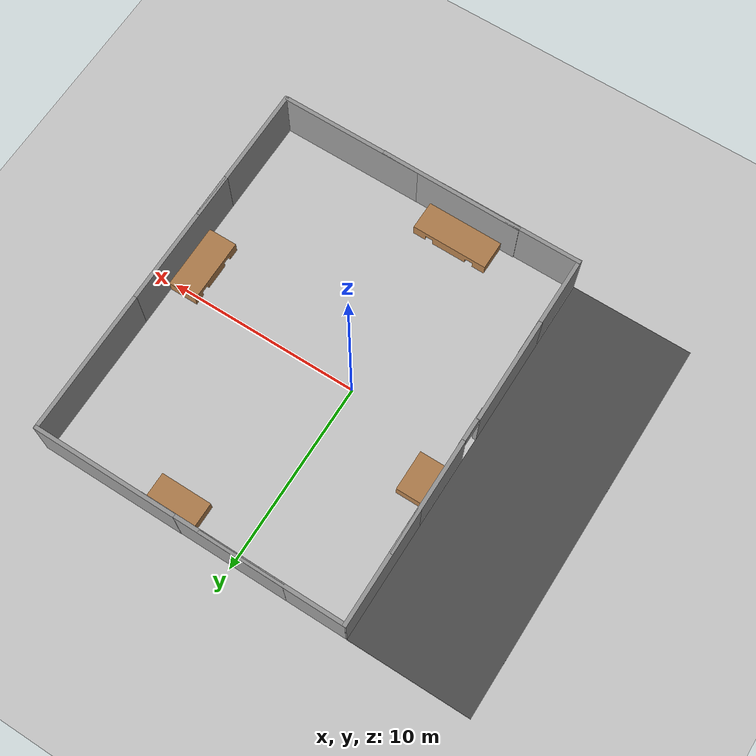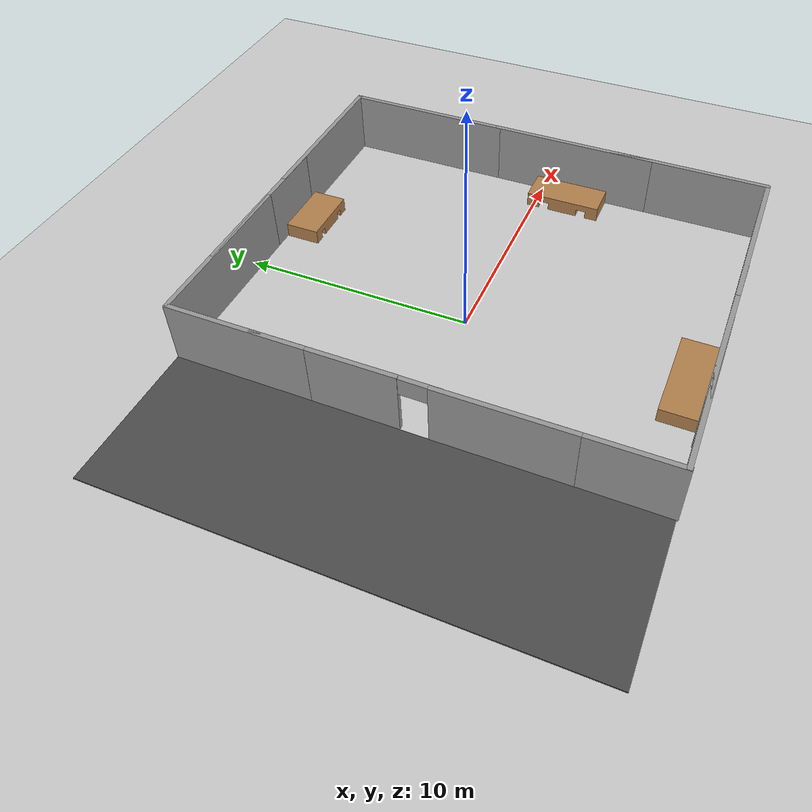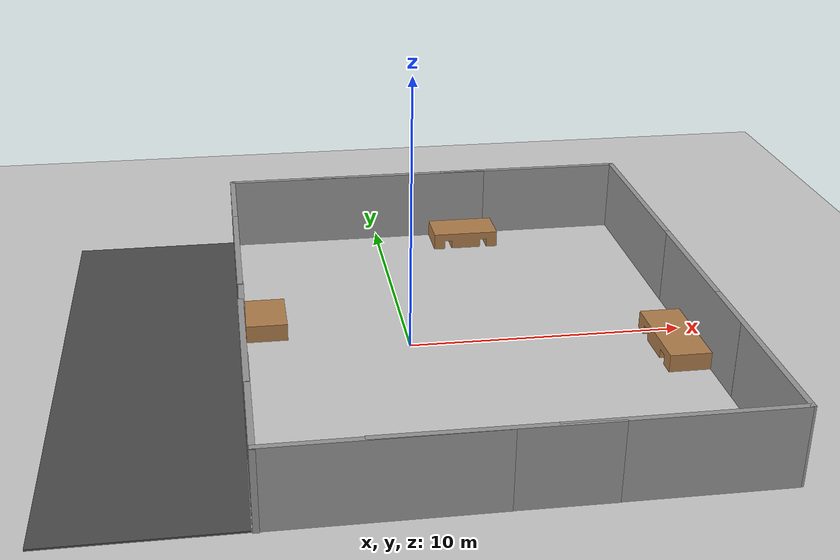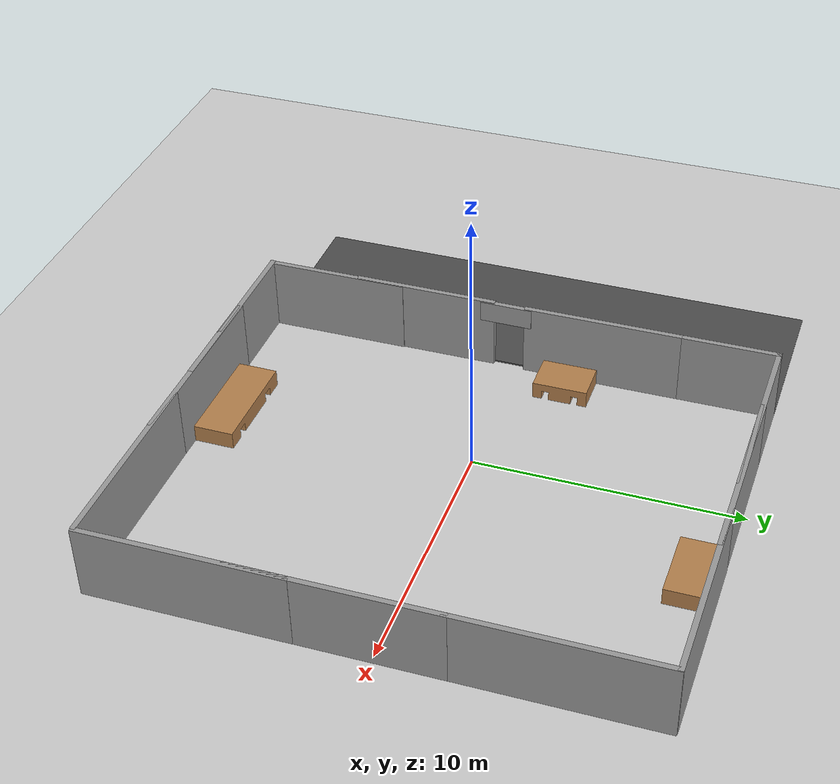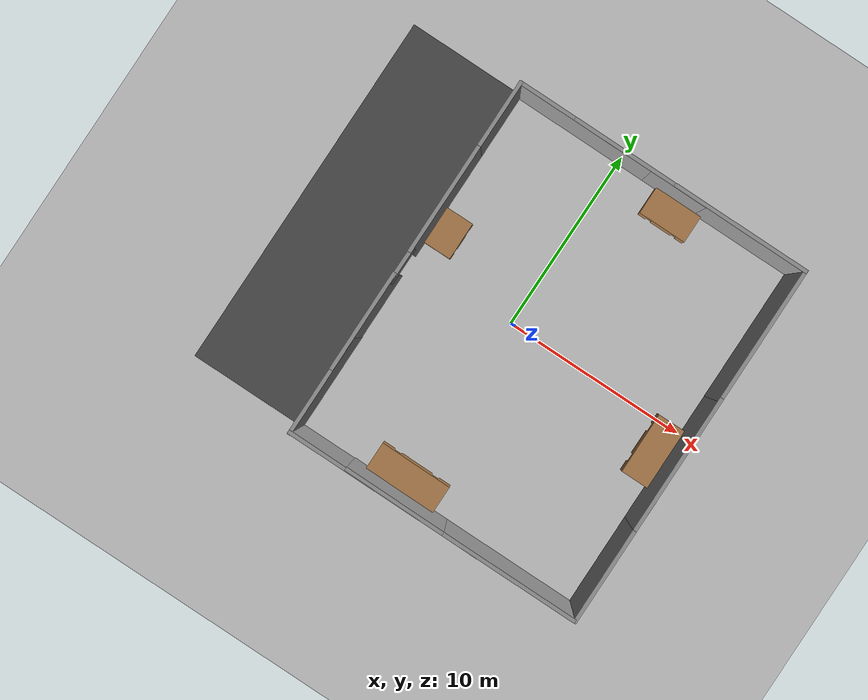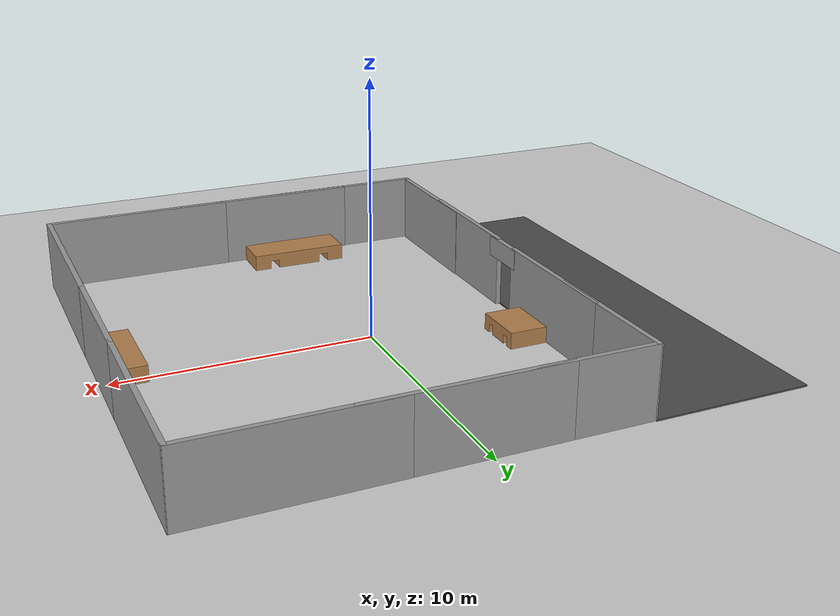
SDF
<sdf version="1.7">
 <world name="default">
  <light name="sun" type="directional">
   <pose>0 0 10 0 -0 0</pose>
   <diffuse>0.8 0.8 0.8 1</diffuse>
   <specular>0.2 0.2 0.2 1</specular>
   <attenuation>
    <range>1000</range>
    <constant>0.9</constant>
    <linear>0.01</linear>
    <quadratic>0.001</quadratic>
   </attenuation>
   <direction>-0.5 0.1 -0.9</direction>
   <spot><inner_angle>0</inner_angle><outer_angle>0</outer_angle><falloff>0</falloff></spot>
  </light>
  <model name="ground_plane">
   <static>1</static>
   <link name="link">
    <collision name="collision">
     <geometry><plane><normal>0 0 1</normal><size>100 100</size></plane></geometry>
     <surface><friction><ode><mu>100</mu><mu2>50</mu2></ode></friction></surface>
    </collision>
    <visual name="visual">
     <cast_shadows>0</cast_shadows>
     <geometry><plane><normal>0 0 1</normal><size>100 100</size></plane></geometry>
     <material>
      <script><uri>file://media/materials/scripts/gazebo.material</uri><name>Gazebo/Grey</name></script>
     </material>
    </visual>
   </link>
  </model>
  <gravity>0 0 -9.8</gravity>
  <magnetic_field>6e-06 2.3e-05 -4.2e-05</magnetic_field>
  <atmosphere type="adiabatic"/>
  <physics type="ode">
   <max_step_size>0.001</max_step_size>
   <real_time_factor>1</real_time_factor>
   <real_time_update_rate>1000</real_time_update_rate>
  </physics>
  <scene><ambient>0.4 0.4 0.4 1</ambient><background>0.7 0.7 0.7 1</background><shadows>1</shadows></scene>
  <spherical_coordinates>
   <surface_model>EARTH_WGS84</surface_model>
   <latitude_deg>0</latitude_deg>
   <longitude_deg>0</longitude_deg>
   <elevation>0</elevation>
   <heading_deg>0</heading_deg>
  </spherical_coordinates>
  <model name="grey_wall">
   <static>1</static>
   <link name="link">
    <pose>0 0 1.4 0 -0 0</pose>
    <collision name="collision"><geometry><box><size>7.5 0.2 2.8</size></box></geometry></collision>
    <visual name="visual">
     <cast_shadows>0</cast_shadows>
     <geometry><box><size>7.5 0.2 2.8</size></box></geometry>
     <material>
      <script>
       <uri>model://grey_wall/materials/scripts</uri>
       <uri>model://grey_wall/materials/textures</uri>
       <name>vrc/grey_wall</name>
      </script>
     </material>
    </visual>
   </link>
   <pose>6.48469 9.73394 0 0 -0 0</pose>
  </model>
  <model name="grey_wall_0">
   <static>1</static>
   <link name="link">
    <pose>0 0 1.4 0 -0 0</pose>
    <collision name="collision"><geometry><box><size>7.5 0.2 2.8</size></box></geometry></collision>
    <visual name="visual">
     <cast_shadows>0</cast_shadows>
     <geometry><box><size>7.5 0.2 2.8</size></box></geometry>
     <material>
      <script>
       <uri>model://grey_wall/materials/scripts</uri>
       <uri>model://grey_wall/materials/textures</uri>
       <name>vrc/grey_wall</name>
      </script>
     </material>
    </visual>
   </link>
   <pose>0.835174 9.72365 0 0 -0 0</pose>
  </model>
  <model name="grey_wall_1">
   <static>1</static>
   <link name="link">
    <pose>0 0 1.4 0 -0 0</pose>
    <collision name="collision"><geometry><box><size>7.5 0.2 2.8</size></box></geometry></collision>
    <visual name="visual">
     <cast_shadows>0</cast_shadows>
     <geometry><box><size>7.5 0.2 2.8</size></box></geometry>
     <material>
      <script>
       <uri>model://grey_wall/materials/scripts</uri>
       <uri>model://grey_wall/materials/textures</uri>
       <name>vrc/grey_wall</name>
      </script>
     </material>
    </visual>
   </link>
   <pose>6.47343 -10.0659 0 0 -0 0</pose>
  </model>
  <model name="grey_wall_2">
   <static>1</static>
   <link name="link">
    <pose>0 0 1.4 0 -0 0</pose>
    <collision name="collision"><geometry><box><size>7.5 0.2 2.8</size></box></geometry></collision>
    <visual name="visual">
     <cast_shadows>0</cast_shadows>
     <geometry><box><size>7.5 0.2 2.8</size></box></geometry>
     <material>
      <script>
       <uri>model://grey_wall/materials/scripts</uri>
       <uri>model://grey_wall/materials/textures</uri>
       <name>vrc/grey_wall</name>
      </script>
     </material>
    </visual>
   </link>
   <pose>0.933666 -10.0566 -0 0 0 -0.005759</pose>
  </model>
  <model name="grey_wall_3">
   <static>1</static>
   <link name="link">
    <pose>0 0 1.4 0 -0 0</pose>
    <collision name="collision"><geometry><box><size>7.5 0.2 2.8</size></box></geometry></collision>
    <visual name="visual">
     <cast_shadows>0</cast_shadows>
     <geometry><box><size>7.5 0.2 2.8</size></box></geometry>
     <material>
      <script>
       <uri>model://grey_wall/materials/scripts</uri>
       <uri>model://grey_wall/materials/textures</uri>
       <name>vrc/grey_wall</name>
      </script>
     </material>
    </visual>
   </link>
   <pose>10.1917 -1.19868 0 0 -0 1.5731</pose>
  </model>
  <model name="grey_wall_3_clone">
   <static>1</static>
   <link name="link">
    <pose>0 0 1.4 0 -0 0</pose>
    <collision name="collision"><geometry><box><size>7.5 0.2 2.8</size></box></geometry></collision>
    <visual name="visual">
     <cast_shadows>0</cast_shadows>
     <geometry><box><size>7.5 0.2 2.8</size></box></geometry>
     <material>
      <script>
       <uri>model://grey_wall/materials/scripts</uri>
       <uri>model://grey_wall/materials/textures</uri>
       <name>vrc/grey_wall</name>
      </script>
     </material>
    </visual>
   </link>
   <pose>10.1726 6.07295 0 0 -0 1.5731</pose>
  </model>
  <model name="grey_wall_3_clone_0">
   <static>1</static>
   <link name="link">
    <pose>0 0 1.4 0 -0 0</pose>
    <collision name="collision"><geometry><box><size>6.5 0.2 2.8</size></box></geometry></collision>
    <visual name="visual">
     <cast_shadows>0</cast_shadows>
     <geometry><box><size>6 0.2 2.8</size></box></geometry>
     <material>
      <script>
       <uri>model://grey_wall/materials/scripts</uri>
       <uri>model://grey_wall/materials/textures</uri>
       <name>vrc/grey_wall</name>
      </script>
     </material>
    </visual>
   </link>
   <pose>-5.96581 3.14206 0 0 -0 1.5731</pose>
  </model>
  <model name="grey_wall_3_clone_1">
   <static>1</static>
   <link name="link">
    <pose>0 0 1.4 0 -0 0</pose>
    <collision name="collision"><geometry><box><size>5.5 0.2 2.8</size></box></geometry></collision>
    <visual name="visual">
     <cast_shadows>0</cast_shadows>
     <geometry><box><size>5.5 0.2 2.8</size></box></geometry>
     <material>
      <script>
       <uri>model://grey_wall/materials/scripts</uri>
       <uri>model://grey_wall/materials/textures</uri>
       <name>vrc/grey_wall</name>
      </script>
     </material>
    </visual>
   </link>
   <pose>-5.97904 -3.77675 0 0 -0 1.5731</pose>
  </model>
  <model name="grey_wall_3_clone_2">
   <static>1</static>
   <link name="link">
    <collision name="collision"><geometry><box><size>2 0.2 0.8</size></box></geometry></collision>
    <visual name="visual">
     <cast_shadows>0</cast_shadows>
     <geometry><box><size>2 0.2 0.8</size></box></geometry>
     <material>
      <script>
       <uri>model://grey_wall/materials/scripts</uri>
       <uri>model://grey_wall/materials/textures</uri>
       <name>vrc/grey_wall</name>
      </script>
     </material>
    </visual>
   </link>
   <pose>-5.94615 -0.577036 2.37198 0 -0 1.56403</pose>
  </model>
  <model name="grey_wall_3_clone_0_clone">
   <static>1</static>
   <link name="link">
    <pose>0 0 1.4 0 -0 0</pose>
    <collision name="collision"><geometry><box><size>6.5 0.2 2.8</size></box></geometry></collision>
    <visual name="visual">
     <cast_shadows>0</cast_shadows>
     <geometry><box><size>6 0.2 2.8</size></box></geometry>
     <material>
      <script>
       <uri>model://grey_wall/materials/scripts</uri>
       <uri>model://grey_wall/materials/textures</uri>
       <name>vrc/grey_wall</name>
      </script>
     </material>
    </visual>
   </link>
   <pose>-5.97618 6.81442 0 0 -0 1.5731</pose>
  </model>
  <model name="grey_wall_3_clone_1_clone">
   <static>1</static>
   <link name="link">
    <pose>0 0 1.4 0 -0 0</pose>
    <collision name="collision"><geometry><box><size>5.5 0.2 2.8</size></box></geometry></collision>
    <visual name="visual">
     <cast_shadows>0</cast_shadows>
     <geometry><box><size>5.5 0.2 2.8</size></box></geometry>
     <material>
      <script>
       <uri>model://grey_wall/materials/scripts</uri>
       <uri>model://grey_wall/materials/textures</uri>
       <name>vrc/grey_wall</name>
      </script>
     </material>
    </visual>
   </link>
   <pose>-5.95536 -7.43945 -0.015803 0 -0 1.5731</pose>
  </model>
  <model name="grey_wall_3_clone_3">
   <static>1</static>
   <link name="link">
    <pose>0 0 1.4 0 -0 0</pose>
    <collision name="collision"><geometry><box><size>7.5 0.2 2.8</size></box></geometry></collision>
    <visual name="visual">
     <cast_shadows>0</cast_shadows>
     <geometry><box><size>7.5 0.2 2.8</size></box></geometry>
     <material>
      <script>
       <uri>model://grey_wall/materials/scripts</uri>
       <uri>model://grey_wall/materials/textures</uri>
       <name>vrc/grey_wall</name>
      </script>
     </material>
    </visual>
   </link>
   <pose>10.2075 -6.3912 0 0 -0 1.5731</pose>
  </model>
  <model name="dockstation1">
   <link name="link_0">
    <inertial>
     <mass>1</mass>
     <inertia>
      <ixx>0.166667</ixx>
      <ixy>0</ixy>
      <ixz>0</ixz>
      <iyy>0.166667</iyy>
      <iyz>0</iyz>
      <izz>0.166667</izz>
     </inertia>
    </inertial>
    <pose>1e-06 1e-06 0 0 -0 0.001492</pose>
    <visual name="visual">
     <geometry>
      <mesh>
       <uri>/home/sagni/catkin_wsthesis/src/robothesis/meshes/tables/new_table1.dae</uri>
       <scale>0.5 0.5 0.5</scale>
      </mesh>
     </geometry>
     <material>
      <lighting>1</lighting>
      <script><uri>file://media/materials/scripts/gazebo.material</uri><name>Gazebo/wood</name></script>
      <shader type="pixel"><normal_map>__default__</normal_map></shader>
      <ambient>0.3 0.3 0.3 1</ambient>
      <diffuse>0.7 0.7 0.7 1</diffuse>
      <specular>0.01 0.01 0.01 1</specular>
      <emissive>0 0 0 1</emissive>
     </material>
    </visual>
    <collision name="collision">
     <geometry>
      <mesh>
       <uri>/home/sagni/catkin_wsthesis/src/robothesis/meshes/tables/new_table1.dae</uri>
       <scale>0.5 0.5 0.5</scale>
      </mesh>
     </geometry>
     <surface>
      <friction>
       <ode><mu>1</mu><mu2>1</mu2><fdir1>0 0 0</fdir1><slip1>0</slip1><slip2>0</slip2></ode>
       <torsional>
        <coefficient>1</coefficient>
        <patch_radius>0</patch_radius>
        <surface_radius>0</surface_radius>
        <use_patch_radius>1</use_patch_radius>
        <ode><slip>0</slip></ode>
       </torsional>
      </friction>
      <bounce><restitution_coefficient>0</restitution_coefficient><threshold>1e+06</threshold></bounce>
      <contact>
       <collide_without_contact>0</collide_without_contact>
       <collide_without_contact_bitmask>1</collide_without_contact_bitmask>
       <collide_bitmask>1</collide_bitmask>
       <ode>
        <soft_cfm>0</soft_cfm>
        <soft_erp>0.2</soft_erp>
        <kp>1e+13</kp>
        <kd>1</kd>
        <max_vel>0.01</max_vel>
        <min_depth>0</min_depth>
       </ode>
       <bullet>
        <split_impulse>1</split_impulse>
        <split_impulse_penetration_threshold>-0.01</split_impulse_penetration_threshold>
        <soft_cfm>0</soft_cfm>
        <soft_erp>0.2</soft_erp>
        <kp>1e+13</kp>
        <kd>1</kd>
       </bullet>
      </contact>
     </surface>
    </collision>
   </link>
   <static>0</static>
   <pose>-0.077392 -9.2003 -0.002713 0 0 -0.007483</pose>
  </model>
  <model name="docksatation2">
   <link name="link_1">
    <inertial>
     <mass>1</mass>
     <inertia>
      <ixx>0.166667</ixx>
      <ixy>0</ixy>
      <ixz>0</ixz>
      <iyy>0.166667</iyy>
      <iyz>0</iyz>
      <izz>0.166667</izz>
     </inertia>
    </inertial>
    <pose>-1e-06 0 0 0 0 -1.57079</pose>
    <visual name="visual">
     <geometry>
      <mesh>
       <uri>/home/sagni/catkin_wsthesis/src/robothesis/meshes/tables/new_table2.dae</uri>
       <scale>0.5 0.5 0.5</scale>
      </mesh>
     </geometry>
     <material>
      <lighting>1</lighting>
      <script><uri>file://media/materials/scripts/gazebo.material</uri><name>Gazebo/wood</name></script>
      <shader type="pixel"><normal_map>__default__</normal_map></shader>
      <ambient>0.3 0.3 0.3 1</ambient>
      <diffuse>0.7 0.7 0.7 1</diffuse>
      <specular>0.01 0.01 0.01 1</specular>
      <emissive>0 0 0 1</emissive>
     </material>
    </visual>
    <collision name="collision">
     <geometry>
      <mesh>
       <uri>/home/sagni/catkin_wsthesis/src/robothesis/meshes/tables/new_table2.dae</uri>
       <scale>0.5 0.5 0.5</scale>
      </mesh>
     </geometry>
     <surface>
      <friction>
       <ode><mu>1</mu><mu2>1</mu2><fdir1>0 0 0</fdir1><slip1>0</slip1><slip2>0</slip2></ode>
       <torsional>
        <coefficient>1</coefficient>
        <patch_radius>0</patch_radius>
        <surface_radius>0</surface_radius>
        <use_patch_radius>1</use_patch_radius>
        <ode><slip>0</slip></ode>
       </torsional>
      </friction>
      <bounce><restitution_coefficient>0</restitution_coefficient><threshold>1e+06</threshold></bounce>
      <contact>
       <collide_without_contact>0</collide_without_contact>
       <collide_without_contact_bitmask>1</collide_without_contact_bitmask>
       <collide_bitmask>1</collide_bitmask>
       <ode>
        <soft_cfm>0</soft_cfm>
        <soft_erp>0.2</soft_erp>
        <kp>1e+13</kp>
        <kd>1</kd>
        <max_vel>0.01</max_vel>
        <min_depth>0</min_depth>
       </ode>
       <bullet>
        <split_impulse>1</split_impulse>
        <split_impulse_penetration_threshold>-0.01</split_impulse_penetration_threshold>
        <soft_cfm>0</soft_cfm>
        <soft_erp>0.2</soft_erp>
        <kp>1e+13</kp>
        <kd>1</kd>
       </bullet>
      </contact>
     </surface>
    </collision>
   </link>
   <static>0</static>
   <pose>9.34191 -1.38913 -0.002719 9e-06 -0 0.002387</pose>
  </model>
  <model name="dockstation4">
   <link name="link_3">
    <inertial>
     <mass>1</mass>
     <inertia>
      <ixx>0.166667</ixx>
      <ixy>0</ixy>
      <ixz>0</ixz>
      <iyy>0.166667</iyy>
      <iyz>0</iyz>
      <izz>0.166667</izz>
     </inertia>
    </inertial>
    <pose>4e-06 4e-06 0 0 0 -1.57783</pose>
    <visual name="visual">
     <geometry>
      <mesh>
       <uri>/home/sagni/catkin_wsthesis/src/robothesis/meshes/tables/new_table4.dae</uri>
       <scale>0.5 0.5 0.5</scale>
      </mesh>
     </geometry>
     <material>
      <lighting>1</lighting>
      <script><uri>file://media/materials/scripts/gazebo.material</uri><name>Gazebo/wood</name></script>
      <shader type="pixel"><normal_map>__default__</normal_map></shader>
      <ambient>0.3 0.3 0.3 1</ambient>
      <diffuse>0.7 0.7 0.7 1</diffuse>
      <specular>0.01 0.01 0.01 1</specular>
      <emissive>0 0 0 1</emissive>
     </material>
    </visual>
    <collision name="collision">
     <geometry>
      <mesh>
       <uri>/home/sagni/catkin_wsthesis/src/robothesis/meshes/tables/new_table4.dae</uri>
       <scale>0.5 0.5 0.5</scale>
      </mesh>
     </geometry>
     <surface>
      <friction>
       <ode><mu>1</mu><mu2>1</mu2><fdir1>0 0 0</fdir1><slip1>0</slip1><slip2>0</slip2></ode>
       <torsional>
        <coefficient>1</coefficient>
        <patch_radius>0</patch_radius>
        <surface_radius>0</surface_radius>
        <use_patch_radius>1</use_patch_radius>
        <ode><slip>0</slip></ode>
       </torsional>
      </friction>
      <bounce><restitution_coefficient>0</restitution_coefficient><threshold>1e+06</threshold></bounce>
      <contact>
       <collide_without_contact>0</collide_without_contact>
       <collide_without_contact_bitmask>1</collide_without_contact_bitmask>
       <collide_bitmask>1</collide_bitmask>
       <ode>
        <soft_cfm>0</soft_cfm>
        <soft_erp>0.2</soft_erp>
        <kp>1e+13</kp>
        <kd>1</kd>
        <max_vel>0.01</max_vel>
        <min_depth>0</min_depth>
       </ode>
       <bullet>
        <split_impulse>1</split_impulse>
        <split_impulse_penetration_threshold>-0.01</split_impulse_penetration_threshold>
        <soft_cfm>0</soft_cfm>
        <soft_erp>0.2</soft_erp>
        <kp>1e+13</kp>
        <kd>1</kd>
       </bullet>
      </contact>
     </surface>
    </collision>
   </link>
   <static>0</static>
   <pose>-5.08714 2.01341 -0.002713 0 -0 0.009337</pose>
  </model>
  <model name="dockingstation3">
   <link name="link_0">
    <inertial>
     <mass>1</mass>
     <inertia>
      <ixx>0.166667</ixx>
      <ixy>0</ixy>
      <ixz>0</ixz>
      <iyy>0.166667</iyy>
      <iyz>0</iyz>
      <izz>0.166667</izz>
     </inertia>
    </inertial>
    <pose>4e-06 -3e-06 0 0 -0 0</pose>
    <visual name="visual">
     <geometry>
      <mesh>
       <uri>/home/sagni/catkin_wsthesis/src/robothesis/meshes/tables/new_table3.dae</uri>
       <scale>0.5 0.5 0.5</scale>
      </mesh>
     </geometry>
     <material>
      <lighting>1</lighting>
      <script><uri>file://media/materials/scripts/gazebo.material</uri><name>Gazebo/wood</name></script>
      <shader type="pixel"><normal_map>__default__</normal_map></shader>
      <ambient>0.3 0.3 0.3 1</ambient>
      <diffuse>0.7 0.7 0.7 1</diffuse>
      <specular>0.01 0.01 0.01 1</specular>
      <emissive>0 0 0 1</emissive>
     </material>
    </visual>
    <collision name="collision">
     <geometry>
      <mesh>
       <uri>/home/sagni/catkin_wsthesis/src/robothesis/meshes/tables/new_table3.dae</uri>
       <scale>0.5 0.5 0.5</scale>
      </mesh>
     </geometry>
     <surface>
      <friction>
       <ode><mu>1</mu><mu2>1</mu2><fdir1>0 0 0</fdir1><slip1>0</slip1><slip2>0</slip2></ode>
       <torsional>
        <coefficient>1</coefficient>
        <patch_radius>0</patch_radius>
        <surface_radius>0</surface_radius>
        <use_patch_radius>1</use_patch_radius>
        <ode><slip>0</slip></ode>
       </torsional>
      </friction>
      <bounce><restitution_coefficient>0</restitution_coefficient><threshold>1e+06</threshold></bounce>
      <contact>
       <collide_without_contact>0</collide_without_contact>
       <collide_without_contact_bitmask>1</collide_without_contact_bitmask>
       <collide_bitmask>1</collide_bitmask>
       <ode>
        <soft_cfm>0</soft_cfm>
        <soft_erp>0.2</soft_erp>
        <kp>1e+13</kp>
        <kd>1</kd>
        <max_vel>0.01</max_vel>
        <min_depth>0</min_depth>
       </ode>
       <bullet>
        <split_impulse>1</split_impulse>
        <split_impulse_penetration_threshold>-0.01</split_impulse_penetration_threshold>
        <soft_cfm>0</soft_cfm>
        <soft_erp>0.2</soft_erp>
        <kp>1e+13</kp>
        <kd>1</kd>
       </bullet>
      </contact>
     </surface>
    </collision>
   </link>
   <static>0</static>
   <pose>3.57608 8.84257 -0.002971 -5e-06 3e-06 0.000286</pose>
  </model>
  <model name="grey_wall_4">
   <static>1</static>
   <link name="link">
    <pose>0 0 1.4 0 -0 0</pose>
    <collision name="collision"><geometry><box><size>7.5 0.2 2.8</size></box></geometry></collision>
    <visual name="visual">
     <cast_shadows>0</cast_shadows>
     <geometry><box><size>7.5 0.2 2.8</size></box></geometry>
     <material>
      <script>
       <uri>model://grey_wall/materials/scripts</uri>
       <uri>model://grey_wall/materials/textures</uri>
       <name>vrc/grey_wall</name>
      </script>
     </material>
    </visual>
   </link>
   <pose>-2.28892 -10.0698 0 0 -0 0</pose>
  </model>
  <model name="grey_wall_5">
   <static>1</static>
   <link name="link">
    <pose>0 0 1.4 0 -0 0</pose>
    <collision name="collision"><geometry><box><size>7.5 0.2 2.8</size></box></geometry></collision>
    <visual name="visual">
     <cast_shadows>0</cast_shadows>
     <geometry><box><size>7.5 0.2 2.8</size></box></geometry>
     <material>
      <script>
       <uri>model://grey_wall/materials/scripts</uri>
       <uri>model://grey_wall/materials/textures</uri>
       <name>vrc/grey_wall</name>
      </script>
     </material>
    </visual>
   </link>
   <pose>-2.27224 9.72168 0 0 -0 0</pose>
  </model>
  <model name="asphalt_plane">
   <static>1</static>
   <link name="link">
    <collision name="collision"><geometry><box><size>6.30032 19.9484 0.0610243</size></box></geometry></collision>
    <visual name="visual">
     <cast_shadows>0</cast_shadows>
     <geometry><box><size>6.30032 19.9484 0.0610243</size></box></geometry>
     <material>
      <script>
       <uri>model://asphalt_plane/materials/scripts</uri>
       <uri>model://asphalt_plane/materials/textures</uri>
       <name>vrc/asphalt</name>
      </script>
     </material>
    </visual>
   </link>
   <pose>-9.22202 -0.149906 0 0 -0 0</pose>
  </model>
 </world>
</sdf>
